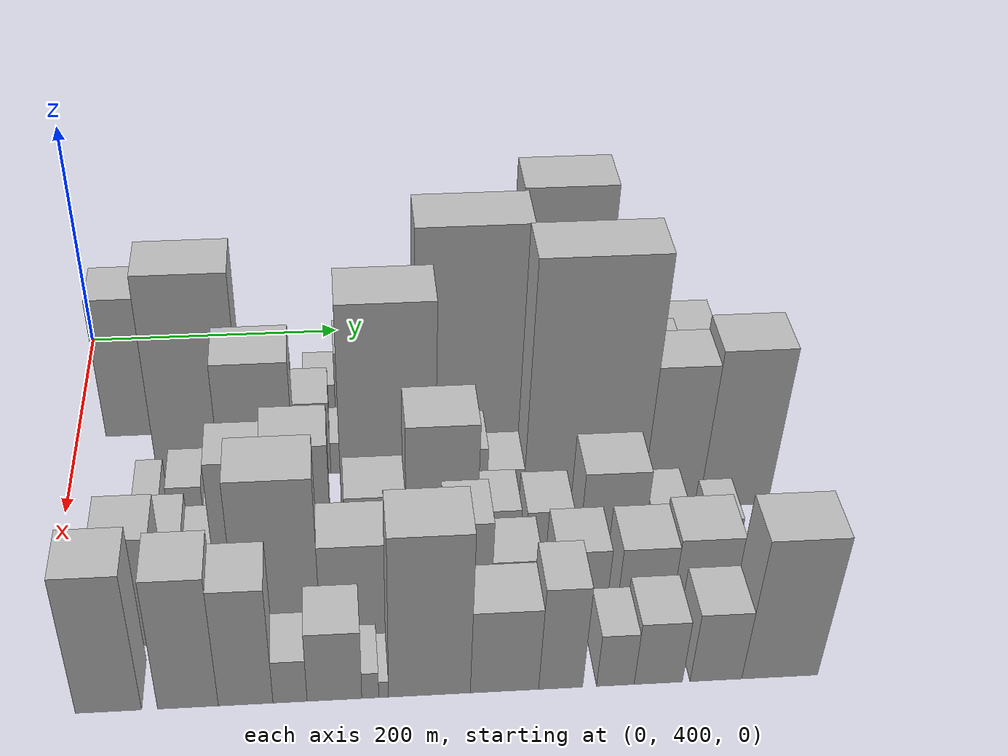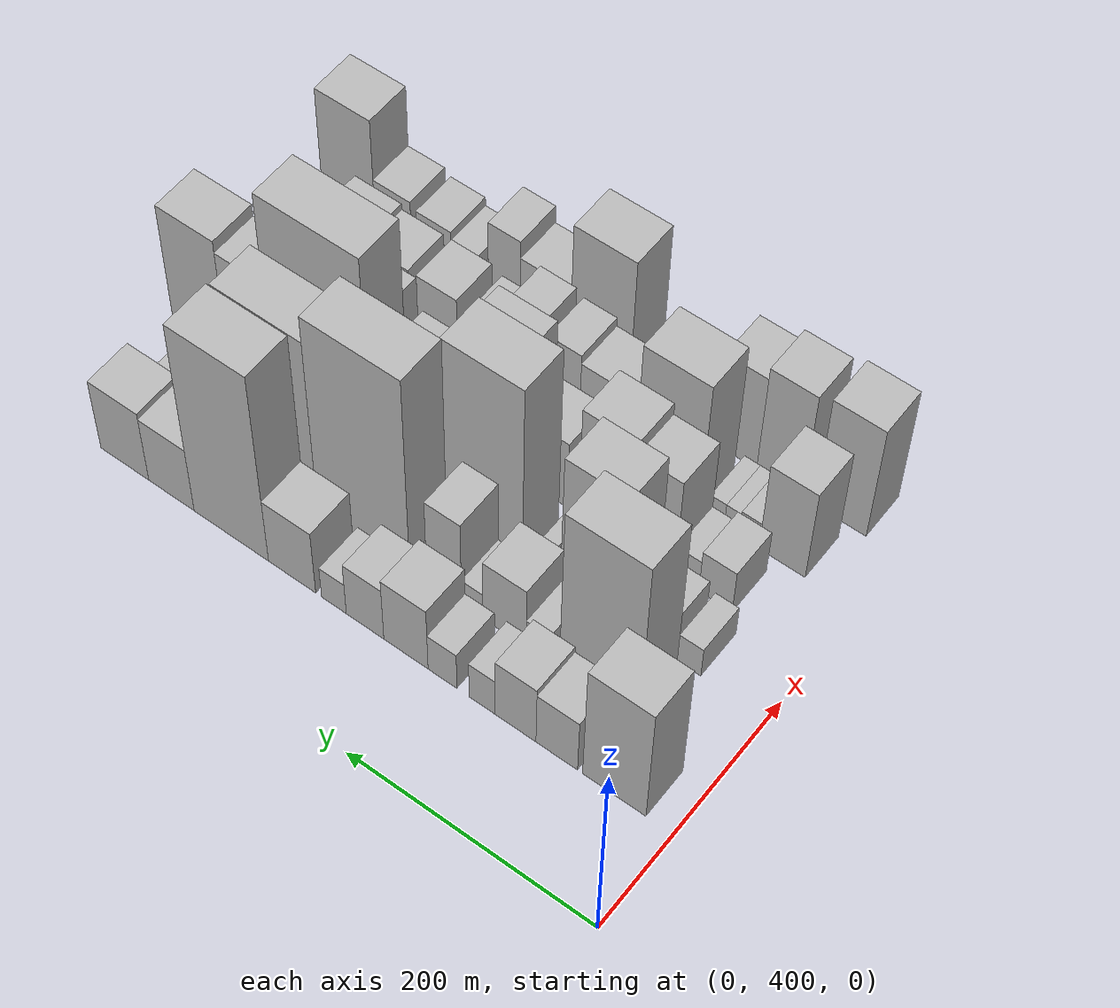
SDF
<sdf version="1.6">
 <world name="default">
  <model name="building_37">
   <static>1</static>
   <pose>100.0000 446.4588 0 0.000000 0.000000 0.000000</pose>
   <link name="link">
    <pose>0 0 64.50 0 0 0</pose>
    <collision name="collision"><geometry><box><size>40.0000 49.7935 129.0000</size></box></geometry></collision>
    <visual name="visual">
     <cast_shadows>0</cast_shadows>
     <geometry><box><size>40.0000 49.7935 129.0000</size></box></geometry>
     <material>
      <script>
       <uri>model://HANNAS_wall/materials/scripts</uri>
       <uri>model://HANNAS_wall/materials/textures</uri>
       <name>vrc/HANNAS_wall</name>
      </script>
     </material>
    </visual>
   </link>
  </model>
  <model name="building_38">
   <static>1</static>
   <pose>100.0000 491.9619 0 0.000000 0.000000 0.000000</pose>
   <link name="link">
    <pose>0 0 30.00 0 0 0</pose>
    <collision name="collision"><geometry><box><size>40.0000 33.2126 60.0000</size></box></geometry></collision>
    <visual name="visual">
     <cast_shadows>0</cast_shadows>
     <geometry><box><size>40.0000 33.2126 60.0000</size></box></geometry>
     <material>
      <script>
       <uri>model://HANNAS_wall/materials/scripts</uri>
       <uri>model://HANNAS_wall/materials/textures</uri>
       <name>vrc/HANNAS_wall</name>
      </script>
     </material>
    </visual>
   </link>
  </model>
  <model name="building_39">
   <static>1</static>
   <pose>100.0000 525.1306 0 0.000000 0.000000 0.000000</pose>
   <link name="link">
    <pose>0 0 33.00 0 0 0</pose>
    <collision name="collision"><geometry><box><size>40.0000 33.1248 66.0000</size></box></geometry></collision>
    <visual name="visual">
     <cast_shadows>0</cast_shadows>
     <geometry><box><size>40.0000 33.1248 66.0000</size></box></geometry>
     <material>
      <script>
       <uri>model://HANNAS_wall/materials/scripts</uri>
       <uri>model://HANNAS_wall/materials/textures</uri>
       <name>vrc/HANNAS_wall</name>
      </script>
     </material>
    </visual>
   </link>
  </model>
  <model name="building_40">
   <static>1</static>
   <pose>100.0000 552.2777 0 0.000000 0.000000 0.000000</pose>
   <link name="link">
    <pose>0 0 21.00 0 0 0</pose>
    <collision name="collision"><geometry><box><size>40.0000 21.1694 42.0000</size></box></geometry></collision>
    <visual name="visual">
     <cast_shadows>0</cast_shadows>
     <geometry><box><size>40.0000 21.1694 42.0000</size></box></geometry>
     <material>
      <script>
       <uri>model://HANNAS_wall/materials/scripts</uri>
       <uri>model://HANNAS_wall/materials/textures</uri>
       <name>vrc/HANNAS_wall</name>
      </script>
     </material>
    </visual>
   </link>
  </model>
  <model name="building_41">
   <static>1</static>
   <pose>100.0000 584.7728 0 0.000000 0.000000 0.000000</pose>
   <link name="link">
    <pose>0 0 21.00 0 0 0</pose>
    <collision name="collision"><geometry><box><size>40.0000 23.8207 42.0000</size></box></geometry></collision>
    <visual name="visual">
     <cast_shadows>0</cast_shadows>
     <geometry><box><size>40.0000 23.8207 42.0000</size></box></geometry>
     <material>
      <script>
       <uri>model://HANNAS_wall/materials/scripts</uri>
       <uri>model://HANNAS_wall/materials/textures</uri>
       <name>vrc/HANNAS_wall</name>
      </script>
     </material>
    </visual>
   </link>
  </model>
  <model name="building_42">
   <static>1</static>
   <pose>100.0000 615.1930 0 0.000000 0.000000 0.000000</pose>
   <link name="link">
    <pose>0 0 36.00 0 0 0</pose>
    <collision name="collision"><geometry><box><size>40.0000 37.0197 72.0000</size></box></geometry></collision>
    <visual name="visual">
     <cast_shadows>0</cast_shadows>
     <geometry><box><size>40.0000 37.0197 72.0000</size></box></geometry>
     <material>
      <script>
       <uri>model://HANNAS_wall/materials/scripts</uri>
       <uri>model://HANNAS_wall/materials/textures</uri>
       <name>vrc/HANNAS_wall</name>
      </script>
     </material>
    </visual>
   </link>
  </model>
  <model name="building_43">
   <static>1</static>
   <pose>100.0000 649.6365 0 0.000000 0.000000 0.000000</pose>
   <link name="link">
    <pose>0 0 30.00 0 0 0</pose>
    <collision name="collision"><geometry><box><size>40.0000 31.8674 60.0000</size></box></geometry></collision>
    <visual name="visual">
     <cast_shadows>0</cast_shadows>
     <geometry><box><size>40.0000 31.8674 60.0000</size></box></geometry>
     <material>
      <script>
       <uri>model://HANNAS_wall/materials/scripts</uri>
       <uri>model://HANNAS_wall/materials/textures</uri>
       <name>vrc/HANNAS_wall</name>
      </script>
     </material>
    </visual>
   </link>
  </model>
  <model name="building_44">
   <static>1</static>
   <pose>100.0000 676.1484 0 0.000000 0.000000 0.000000</pose>
   <link name="link">
    <pose>0 0 18.00 0 0 0</pose>
    <collision name="collision"><geometry><box><size>40.0000 21.1563 36.0000</size></box></geometry></collision>
    <visual name="visual">
     <cast_shadows>0</cast_shadows>
     <geometry><box><size>40.0000 21.1563 36.0000</size></box></geometry>
     <material>
      <script>
       <uri>model://HANNAS_wall/materials/scripts</uri>
       <uri>model://HANNAS_wall/materials/textures</uri>
       <name>vrc/HANNAS_wall</name>
      </script>
     </material>
    </visual>
   </link>
  </model>
  <model name="building_45">
   <static>1</static>
   <pose>100.0000 712.2289 0 0.000000 0.000000 0.000000</pose>
   <link name="link">
    <pose>0 0 36.00 0 0 0</pose>
    <collision name="collision"><geometry><box><size>40.0000 41.0048 72.0000</size></box></geometry></collision>
    <visual name="visual">
     <cast_shadows>0</cast_shadows>
     <geometry><box><size>40.0000 41.0048 72.0000</size></box></geometry>
     <material>
      <script>
       <uri>model://HANNAS_wall/materials/scripts</uri>
       <uri>model://HANNAS_wall/materials/textures</uri>
       <name>vrc/HANNAS_wall</name>
      </script>
     </material>
    </visual>
   </link>
  </model>
  <model name="building_46">
   <static>1</static>
   <pose>100.0000 765.6833 0 0.000000 0.000000 0.000000</pose>
   <link name="link">
    <pose>0 0 105.00 0 0 0</pose>
    <collision name="collision"><geometry><box><size>40.0000 65.9039 210.0000</size></box></geometry></collision>
    <visual name="visual">
     <cast_shadows>0</cast_shadows>
     <geometry><box><size>40.0000 65.9039 210.0000</size></box></geometry>
     <material>
      <script>
       <uri>model://HANNAS_wall/materials/scripts</uri>
       <uri>model://HANNAS_wall/materials/textures</uri>
       <name>vrc/HANNAS_wall</name>
      </script>
     </material>
    </visual>
   </link>
  </model>
  <model name="building_47">
   <static>1</static>
   <pose>100.0000 819.1028 0 0.000000 0.000000 0.000000</pose>
   <link name="link">
    <pose>0 0 36.00 0 0 0</pose>
    <collision name="collision"><geometry><box><size>40.0000 40.9353 72.0000</size></box></geometry></collision>
    <visual name="visual">
     <cast_shadows>0</cast_shadows>
     <geometry><box><size>40.0000 40.9353 72.0000</size></box></geometry>
     <material>
      <script>
       <uri>model://HANNAS_wall/materials/scripts</uri>
       <uri>model://HANNAS_wall/materials/textures</uri>
       <name>vrc/HANNAS_wall</name>
      </script>
     </material>
    </visual>
   </link>
  </model>
  <model name="building_48">
   <static>1</static>
   <pose>100.0000 861.5395 0 0.000000 0.000000 0.000000</pose>
   <link name="link">
    <pose>0 0 39.00 0 0 0</pose>
    <collision name="collision"><geometry><box><size>40.0000 43.9381 78.0000</size></box></geometry></collision>
    <visual name="visual">
     <cast_shadows>0</cast_shadows>
     <geometry><box><size>40.0000 43.9381 78.0000</size></box></geometry>
     <material>
      <script>
       <uri>model://HANNAS_wall/materials/scripts</uri>
       <uri>model://HANNAS_wall/materials/textures</uri>
       <name>vrc/HANNAS_wall</name>
      </script>
     </material>
    </visual>
   </link>
  </model>
  <model name="building_84">
   <static>1</static>
   <pose>152.0000 496.5781 0 0.000000 0.000000 0.000000</pose>
   <link name="link">
    <pose>0 0 93.00 0 0 0</pose>
    <collision name="collision"><geometry><box><size>40.0000 64.3268 186.0000</size></box></geometry></collision>
    <visual name="visual">
     <cast_shadows>0</cast_shadows>
     <geometry><box><size>40.0000 64.3268 186.0000</size></box></geometry>
     <material>
      <script>
       <uri>model://HANNAS_wall/materials/scripts</uri>
       <uri>model://HANNAS_wall/materials/textures</uri>
       <name>vrc/HANNAS_wall</name>
      </script>
     </material>
    </visual>
   </link>
  </model>
  <model name="building_85">
   <static>1</static>
   <pose>152.0000 546.3800 0 0.000000 0.000000 0.000000</pose>
   <link name="link">
    <pose>0 0 16.50 0 0 0</pose>
    <collision name="collision"><geometry><box><size>40.0000 19.2770 33.0000</size></box></geometry></collision>
    <visual name="visual">
     <cast_shadows>0</cast_shadows>
     <geometry><box><size>40.0000 19.2770 33.0000</size></box></geometry>
     <material>
      <script>
       <uri>model://HANNAS_wall/materials/scripts</uri>
       <uri>model://HANNAS_wall/materials/textures</uri>
       <name>vrc/HANNAS_wall</name>
      </script>
     </material>
    </visual>
   </link>
  </model>
  <model name="building_86">
   <static>1</static>
   <pose>152.0000 573.8452 0 0.000000 0.000000 0.000000</pose>
   <link name="link">
    <pose>0 0 34.50 0 0 0</pose>
    <collision name="collision"><geometry><box><size>40.0000 35.6533 69.0000</size></box></geometry></collision>
    <visual name="visual">
     <cast_shadows>0</cast_shadows>
     <geometry><box><size>40.0000 35.6533 69.0000</size></box></geometry>
     <material>
      <script>
       <uri>model://HANNAS_wall/materials/scripts</uri>
       <uri>model://HANNAS_wall/materials/textures</uri>
       <name>vrc/HANNAS_wall</name>
      </script>
     </material>
    </visual>
   </link>
  </model>
  <model name="building_87">
   <static>1</static>
   <pose>152.0000 600.6065 0 0.000000 0.000000 0.000000</pose>
   <link name="link">
    <pose>0 0 15.00 0 0 0</pose>
    <collision name="collision"><geometry><box><size>40.0000 17.8693 30.0000</size></box></geometry></collision>
    <visual name="visual">
     <cast_shadows>0</cast_shadows>
     <geometry><box><size>40.0000 17.8693 30.0000</size></box></geometry>
     <material>
      <script>
       <uri>model://HANNAS_wall/materials/scripts</uri>
       <uri>model://HANNAS_wall/materials/textures</uri>
       <name>vrc/HANNAS_wall</name>
      </script>
     </material>
    </visual>
   </link>
  </model>
  <model name="building_88">
   <static>1</static>
   <pose>152.0000 624.1690 0 0.000000 0.000000 0.000000</pose>
   <link name="link">
    <pose>0 0 48.00 0 0 0</pose>
    <collision name="collision"><geometry><box><size>40.0000 29.2557 96.0000</size></box></geometry></collision>
    <visual name="visual">
     <cast_shadows>0</cast_shadows>
     <geometry><box><size>40.0000 29.2557 96.0000</size></box></geometry>
     <material>
      <script>
       <uri>model://HANNAS_wall/materials/scripts</uri>
       <uri>model://HANNAS_wall/materials/textures</uri>
       <name>vrc/HANNAS_wall</name>
      </script>
     </material>
    </visual>
   </link>
  </model>
  <model name="building_89">
   <static>1</static>
   <pose>152.0000 643.6117 0 0.000000 0.000000 0.000000</pose>
   <link name="link">
    <pose>0 0 10.50 0 0 0</pose>
    <collision name="collision"><geometry><box><size>40.0000 9.6298 21.0000</size></box></geometry></collision>
    <visual name="visual">
     <cast_shadows>0</cast_shadows>
     <geometry><box><size>40.0000 9.6298 21.0000</size></box></geometry>
     <material>
      <script>
       <uri>model://HANNAS_wall/materials/scripts</uri>
       <uri>model://HANNAS_wall/materials/textures</uri>
       <name>vrc/HANNAS_wall</name>
      </script>
     </material>
    </visual>
   </link>
  </model>
  <model name="building_90">
   <static>1</static>
   <pose>152.0000 693.3766 0 0.000000 0.000000 0.000000</pose>
   <link name="link">
    <pose>0 0 108.00 0 0 0</pose>
    <collision name="collision"><geometry><box><size>40.0000 79.8999 216.0000</size></box></geometry></collision>
    <visual name="visual">
     <cast_shadows>0</cast_shadows>
     <geometry><box><size>40.0000 79.8999 216.0000</size></box></geometry>
     <material>
      <script>
       <uri>model://HANNAS_wall/materials/scripts</uri>
       <uri>model://HANNAS_wall/materials/textures</uri>
       <name>vrc/HANNAS_wall</name>
      </script>
     </material>
    </visual>
   </link>
  </model>
  <model name="building_91">
   <static>1</static>
   <pose>152.0000 771.0886 0 0.000000 0.000000 0.000000</pose>
   <link name="link">
    <pose>0 0 94.50 0 0 0</pose>
    <collision name="collision"><geometry><box><size>40.0000 75.5242 189.0000</size></box></geometry></collision>
    <visual name="visual">
     <cast_shadows>0</cast_shadows>
     <geometry><box><size>40.0000 75.5242 189.0000</size></box></geometry>
     <material>
      <script>
       <uri>model://HANNAS_wall/materials/scripts</uri>
       <uri>model://HANNAS_wall/materials/textures</uri>
       <name>vrc/HANNAS_wall</name>
      </script>
     </material>
    </visual>
   </link>
  </model>
  <model name="building_92">
   <static>1</static>
   <pose>152.0000 828.2086 0 0.000000 0.000000 0.000000</pose>
   <link name="link">
    <pose>0 0 51.00 0 0 0</pose>
    <collision name="collision"><geometry><box><size>40.0000 32.7158 102.0000</size></box></geometry></collision>
    <visual name="visual">
     <cast_shadows>0</cast_shadows>
     <geometry><box><size>40.0000 32.7158 102.0000</size></box></geometry>
     <material>
      <script>
       <uri>model://HANNAS_wall/materials/scripts</uri>
       <uri>model://HANNAS_wall/materials/textures</uri>
       <name>vrc/HANNAS_wall</name>
      </script>
     </material>
    </visual>
   </link>
  </model>
  <model name="building_93">
   <static>1</static>
   <pose>152.0000 864.6587 0 0.000000 0.000000 0.000000</pose>
   <link name="link">
    <pose>0 0 21.00 0 0 0</pose>
    <collision name="collision"><geometry><box><size>40.0000 24.1844 42.0000</size></box></geometry></collision>
    <visual name="visual">
     <cast_shadows>0</cast_shadows>
     <geometry><box><size>40.0000 24.1844 42.0000</size></box></geometry>
     <material>
      <script>
       <uri>model://HANNAS_wall/materials/scripts</uri>
       <uri>model://HANNAS_wall/materials/textures</uri>
       <name>vrc/HANNAS_wall</name>
      </script>
     </material>
    </visual>
   </link>
  </model>
  <model name="building_131">
   <static>1</static>
   <pose>204.0000 462.0382 0 0.000000 0.000000 0.000000</pose>
   <link name="link">
    <pose>0 0 16.50 0 0 0</pose>
    <collision name="collision"><geometry><box><size>40.0000 18.8869 33.0000</size></box></geometry></collision>
    <visual name="visual">
     <cast_shadows>0</cast_shadows>
     <geometry><box><size>40.0000 18.8869 33.0000</size></box></geometry>
     <material>
      <script>
       <uri>model://HANNAS_wall/materials/scripts</uri>
       <uri>model://HANNAS_wall/materials/textures</uri>
       <name>vrc/HANNAS_wall</name>
      </script>
     </material>
    </visual>
   </link>
  </model>
  <model name="building_132">
   <static>1</static>
   <pose>204.0000 488.8367 0 0.000000 0.000000 0.000000</pose>
   <link name="link">
    <pose>0 0 21.00 0 0 0</pose>
    <collision name="collision"><geometry><box><size>40.0000 24.7100 42.0000</size></box></geometry></collision>
    <visual name="visual">
     <cast_shadows>0</cast_shadows>
     <geometry><box><size>40.0000 24.7100 42.0000</size></box></geometry>
     <material>
      <script>
       <uri>model://HANNAS_wall/materials/scripts</uri>
       <uri>model://HANNAS_wall/materials/textures</uri>
       <name>vrc/HANNAS_wall</name>
      </script>
     </material>
    </visual>
   </link>
  </model>
  <model name="building_133">
   <static>1</static>
   <pose>204.0000 506.4346 0 0.000000 0.000000 0.000000</pose>
   <link name="link">
    <pose>0 0 10.50 0 0 0</pose>
    <collision name="collision"><geometry><box><size>40.0000 10.4859 21.0000</size></box></geometry></collision>
    <visual name="visual">
     <cast_shadows>0</cast_shadows>
     <geometry><box><size>40.0000 10.4859 21.0000</size></box></geometry>
     <material>
      <script>
       <uri>model://HANNAS_wall/materials/scripts</uri>
       <uri>model://HANNAS_wall/materials/textures</uri>
       <name>vrc/HANNAS_wall</name>
      </script>
     </material>
    </visual>
   </link>
  </model>
  <model name="building_134">
   <static>1</static>
   <pose>204.0000 541.2451 0 0.000000 0.000000 0.000000</pose>
   <link name="link">
    <pose>0 0 75.00 0 0 0</pose>
    <collision name="collision"><geometry><box><size>40.0000 51.1350 150.0000</size></box></geometry></collision>
    <visual name="visual">
     <cast_shadows>0</cast_shadows>
     <geometry><box><size>40.0000 51.1350 150.0000</size></box></geometry>
     <material>
      <script>
       <uri>model://HANNAS_wall/materials/scripts</uri>
       <uri>model://HANNAS_wall/materials/textures</uri>
       <name>vrc/HANNAS_wall</name>
      </script>
     </material>
    </visual>
   </link>
  </model>
  <model name="building_135">
   <static>1</static>
   <pose>204.0000 582.1087 0 0.000000 0.000000 0.000000</pose>
   <link name="link">
    <pose>0 0 13.50 0 0 0</pose>
    <collision name="collision"><geometry><box><size>40.0000 12.5923 27.0000</size></box></geometry></collision>
    <visual name="visual">
     <cast_shadows>0</cast_shadows>
     <geometry><box><size>40.0000 12.5923 27.0000</size></box></geometry>
     <material>
      <script>
       <uri>model://HANNAS_wall/materials/scripts</uri>
       <uri>model://HANNAS_wall/materials/textures</uri>
       <name>vrc/HANNAS_wall</name>
      </script>
     </material>
    </visual>
   </link>
  </model>
  <model name="building_136">
   <static>1</static>
   <pose>204.0000 631.5544 0 0.000000 0.000000 0.000000</pose>
   <link name="link">
    <pose>0 0 97.50 0 0 0</pose>
    <collision name="collision"><geometry><box><size>40.0000 66.2992 195.0000</size></box></geometry></collision>
    <visual name="visual">
     <cast_shadows>0</cast_shadows>
     <geometry><box><size>40.0000 66.2992 195.0000</size></box></geometry>
     <material>
      <script>
       <uri>model://HANNAS_wall/materials/scripts</uri>
       <uri>model://HANNAS_wall/materials/textures</uri>
       <name>vrc/HANNAS_wall</name>
      </script>
     </material>
    </visual>
   </link>
  </model>
  <model name="building_137">
   <static>1</static>
   <pose>204.0000 683.0806 0 0.000000 0.000000 0.000000</pose>
   <link name="link">
    <pose>0 0 33.00 0 0 0</pose>
    <collision name="collision"><geometry><box><size>40.0000 36.7530 66.0000</size></box></geometry></collision>
    <visual name="visual">
     <cast_shadows>0</cast_shadows>
     <geometry><box><size>40.0000 36.7530 66.0000</size></box></geometry>
     <material>
      <script>
       <uri>model://HANNAS_wall/materials/scripts</uri>
       <uri>model://HANNAS_wall/materials/textures</uri>
       <name>vrc/HANNAS_wall</name>
      </script>
     </material>
    </visual>
   </link>
  </model>
  <model name="building_138">
   <static>1</static>
   <pose>204.0000 714.5822 0 0.000000 0.000000 0.000000</pose>
   <link name="link">
    <pose>0 0 22.50 0 0 0</pose>
    <collision name="collision"><geometry><box><size>40.0000 26.2503 45.0000</size></box></geometry></collision>
    <visual name="visual">
     <cast_shadows>0</cast_shadows>
     <geometry><box><size>40.0000 26.2503 45.0000</size></box></geometry>
     <material>
      <script>
       <uri>model://HANNAS_wall/materials/scripts</uri>
       <uri>model://HANNAS_wall/materials/textures</uri>
       <name>vrc/HANNAS_wall</name>
      </script>
     </material>
    </visual>
   </link>
  </model>
  <model name="building_139">
   <static>1</static>
   <pose>204.0000 770.8709 0 0.000000 0.000000 0.000000</pose>
   <link name="link">
    <pose>0 0 112.50 0 0 0</pose>
    <collision name="collision"><geometry><box><size>40.0000 86.3272 225.0000</size></box></geometry></collision>
    <visual name="visual">
     <cast_shadows>0</cast_shadows>
     <geometry><box><size>40.0000 86.3272 225.0000</size></box></geometry>
     <material>
      <script>
       <uri>model://HANNAS_wall/materials/scripts</uri>
       <uri>model://HANNAS_wall/materials/textures</uri>
       <name>vrc/HANNAS_wall</name>
      </script>
     </material>
    </visual>
   </link>
  </model>
  <model name="building_140">
   <static>1</static>
   <pose>204.0000 835.0405 0 0.000000 0.000000 0.000000</pose>
   <link name="link">
    <pose>0 0 66.00 0 0 0</pose>
    <collision name="collision"><geometry><box><size>40.0000 42.0120 132.0000</size></box></geometry></collision>
    <visual name="visual">
     <cast_shadows>0</cast_shadows>
     <geometry><box><size>40.0000 42.0120 132.0000</size></box></geometry>
     <material>
      <script>
       <uri>model://HANNAS_wall/materials/scripts</uri>
       <uri>model://HANNAS_wall/materials/textures</uri>
       <name>vrc/HANNAS_wall</name>
      </script>
     </material>
    </visual>
   </link>
  </model>
  <model name="building_141">
   <static>1</static>
   <pose>204.0000 881.3185 0 0.000000 0.000000 0.000000</pose>
   <link name="link">
    <pose>0 0 72.00 0 0 0</pose>
    <collision name="collision"><geometry><box><size>40.0000 50.5440 144.0000</size></box></geometry></collision>
    <visual name="visual">
     <cast_shadows>0</cast_shadows>
     <geometry><box><size>40.0000 50.5440 144.0000</size></box></geometry>
     <material>
      <script>
       <uri>model://HANNAS_wall/materials/scripts</uri>
       <uri>model://HANNAS_wall/materials/textures</uri>
       <name>vrc/HANNAS_wall</name>
      </script>
     </material>
    </visual>
   </link>
  </model>
  <model name="building_181">
   <static>1</static>
   <pose>256.0000 477.4345 0 0.000000 0.000000 0.000000</pose>
   <link name="link">
    <pose>0 0 24.00 0 0 0</pose>
    <collision name="collision"><geometry><box><size>40.0000 26.9178 48.0000</size></box></geometry></collision>
    <visual name="visual">
     <cast_shadows>0</cast_shadows>
     <geometry><box><size>40.0000 26.9178 48.0000</size></box></geometry>
     <material>
      <script>
       <uri>model://HANNAS_wall/materials/scripts</uri>
       <uri>model://HANNAS_wall/materials/textures</uri>
       <name>vrc/HANNAS_wall</name>
      </script>
     </material>
    </visual>
   </link>
  </model>
  <model name="building_182">
   <static>1</static>
   <pose>256.0000 500.6521 0 0.000000 0.000000 0.000000</pose>
   <link name="link">
    <pose>0 0 18.00 0 0 0</pose>
    <collision name="collision"><geometry><box><size>40.0000 19.5173 36.0000</size></box></geometry></collision>
    <visual name="visual">
     <cast_shadows>0</cast_shadows>
     <geometry><box><size>40.0000 19.5173 36.0000</size></box></geometry>
     <material>
      <script>
       <uri>model://HANNAS_wall/materials/scripts</uri>
       <uri>model://HANNAS_wall/materials/textures</uri>
       <name>vrc/HANNAS_wall</name>
      </script>
     </material>
    </visual>
   </link>
  </model>
  <model name="building_183">
   <static>1</static>
   <pose>256.0000 528.6396 0 0.000000 0.000000 0.000000</pose>
   <link name="link">
    <pose>0 0 55.50 0 0 0</pose>
    <collision name="collision"><geometry><box><size>40.0000 36.4577 111.0000</size></box></geometry></collision>
    <visual name="visual">
     <cast_shadows>0</cast_shadows>
     <geometry><box><size>40.0000 36.4577 111.0000</size></box></geometry>
     <material>
      <script>
       <uri>model://HANNAS_wall/materials/scripts</uri>
       <uri>model://HANNAS_wall/materials/textures</uri>
       <name>vrc/HANNAS_wall</name>
      </script>
     </material>
    </visual>
   </link>
  </model>
  <model name="building_184">
   <static>1</static>
   <pose>256.0000 568.6945 0 0.000000 0.000000 0.000000</pose>
   <link name="link">
    <pose>0 0 61.50 0 0 0</pose>
    <collision name="collision"><geometry><box><size>40.0000 43.6522 123.0000</size></box></geometry></collision>
    <visual name="visual">
     <cast_shadows>0</cast_shadows>
     <geometry><box><size>40.0000 43.6522 123.0000</size></box></geometry>
     <material>
      <script>
       <uri>model://HANNAS_wall/materials/scripts</uri>
       <uri>model://HANNAS_wall/materials/textures</uri>
       <name>vrc/HANNAS_wall</name>
      </script>
     </material>
    </visual>
   </link>
  </model>
  <model name="building_185">
   <static>1</static>
   <pose>256.0000 595.2394 0 0.000000 0.000000 0.000000</pose>
   <link name="link">
    <pose>0 0 10.50 0 0 0</pose>
    <collision name="collision"><geometry><box><size>40.0000 9.4376 21.0000</size></box></geometry></collision>
    <visual name="visual">
     <cast_shadows>0</cast_shadows>
     <geometry><box><size>40.0000 9.4376 21.0000</size></box></geometry>
     <material>
      <script>
       <uri>model://HANNAS_wall/materials/scripts</uri>
       <uri>model://HANNAS_wall/materials/textures</uri>
       <name>vrc/HANNAS_wall</name>
      </script>
     </material>
    </visual>
   </link>
  </model>
  <model name="building_186">
   <static>1</static>
   <pose>256.0000 620.3201 0 0.000000 0.000000 0.000000</pose>
   <link name="link">
    <pose>0 0 37.50 0 0 0</pose>
    <collision name="collision"><geometry><box><size>40.0000 40.7239 75.0000</size></box></geometry></collision>
    <visual name="visual">
     <cast_shadows>0</cast_shadows>
     <geometry><box><size>40.0000 40.7239 75.0000</size></box></geometry>
     <material>
      <script>
       <uri>model://HANNAS_wall/materials/scripts</uri>
       <uri>model://HANNAS_wall/materials/textures</uri>
       <name>vrc/HANNAS_wall</name>
      </script>
     </material>
    </visual>
   </link>
  </model>
  <model name="building_187">
   <static>1</static>
   <pose>256.0000 664.8126 0 0.000000 0.000000 0.000000</pose>
   <link name="link">
    <pose>0 0 67.50 0 0 0</pose>
    <collision name="collision"><geometry><box><size>40.0000 48.2611 135.0000</size></box></geometry></collision>
    <visual name="visual">
     <cast_shadows>0</cast_shadows>
     <geometry><box><size>40.0000 48.2611 135.0000</size></box></geometry>
     <material>
      <script>
       <uri>model://HANNAS_wall/materials/scripts</uri>
       <uri>model://HANNAS_wall/materials/textures</uri>
       <name>vrc/HANNAS_wall</name>
      </script>
     </material>
    </visual>
   </link>
  </model>
  <model name="building_188">
   <static>1</static>
   <pose>256.0000 703.8640 0 0.000000 0.000000 0.000000</pose>
   <link name="link">
    <pose>0 0 28.50 0 0 0</pose>
    <collision name="collision"><geometry><box><size>40.0000 29.8417 57.0000</size></box></geometry></collision>
    <visual name="visual">
     <cast_shadows>0</cast_shadows>
     <geometry><box><size>40.0000 29.8417 57.0000</size></box></geometry>
     <material>
      <script>
       <uri>model://HANNAS_wall/materials/scripts</uri>
       <uri>model://HANNAS_wall/materials/textures</uri>
       <name>vrc/HANNAS_wall</name>
      </script>
     </material>
    </visual>
   </link>
  </model>
  <model name="building_189">
   <static>1</static>
   <pose>256.0000 738.7289 0 0.000000 0.000000 0.000000</pose>
   <link name="link">
    <pose>0 0 27.00 0 0 0</pose>
    <collision name="collision"><geometry><box><size>40.0000 31.8881 54.0000</size></box></geometry></collision>
    <visual name="visual">
     <cast_shadows>0</cast_shadows>
     <geometry><box><size>40.0000 31.8881 54.0000</size></box></geometry>
     <material>
      <script>
       <uri>model://HANNAS_wall/materials/scripts</uri>
       <uri>model://HANNAS_wall/materials/textures</uri>
       <name>vrc/HANNAS_wall</name>
      </script>
     </material>
    </visual>
   </link>
  </model>
  <model name="building_190">
   <static>1</static>
   <pose>256.0000 781.9064 0 0.000000 0.000000 0.000000</pose>
   <link name="link">
    <pose>0 0 43.50 0 0 0</pose>
    <collision name="collision"><geometry><box><size>40.0000 44.4669 87.0000</size></box></geometry></collision>
    <visual name="visual">
     <cast_shadows>0</cast_shadows>
     <geometry><box><size>40.0000 44.4669 87.0000</size></box></geometry>
     <material>
      <script>
       <uri>model://HANNAS_wall/materials/scripts</uri>
       <uri>model://HANNAS_wall/materials/textures</uri>
       <name>vrc/HANNAS_wall</name>
      </script>
     </material>
    </visual>
   </link>
  </model>
  <model name="building_191">
   <static>1</static>
   <pose>256.0000 820.3130 0 0.000000 0.000000 0.000000</pose>
   <link name="link">
    <pose>0 0 25.50 0 0 0</pose>
    <collision name="collision"><geometry><box><size>40.0000 26.3464 51.0000</size></box></geometry></collision>
    <visual name="visual">
     <cast_shadows>0</cast_shadows>
     <geometry><box><size>40.0000 26.3464 51.0000</size></box></geometry>
     <material>
      <script>
       <uri>model://HANNAS_wall/materials/scripts</uri>
       <uri>model://HANNAS_wall/materials/textures</uri>
       <name>vrc/HANNAS_wall</name>
      </script>
     </material>
    </visual>
   </link>
  </model>
  <model name="building_192">
   <static>1</static>
   <pose>256.0000 838.6364 0 0.000000 0.000000 0.000000</pose>
   <link name="link">
    <pose>0 0 10.50 0 0 0</pose>
    <collision name="collision"><geometry><box><size>40.0000 10.3004 21.0000</size></box></geometry></collision>
    <visual name="visual">
     <cast_shadows>0</cast_shadows>
     <geometry><box><size>40.0000 10.3004 21.0000</size></box></geometry>
     <material>
      <script>
       <uri>model://HANNAS_wall/materials/scripts</uri>
       <uri>model://HANNAS_wall/materials/textures</uri>
       <name>vrc/HANNAS_wall</name>
      </script>
     </material>
    </visual>
   </link>
  </model>
  <model name="building_193">
   <static>1</static>
   <pose>256.0000 860.4022 0 0.000000 0.000000 0.000000</pose>
   <link name="link">
    <pose>0 0 19.50 0 0 0</pose>
    <collision name="collision"><geometry><box><size>40.0000 23.2312 39.0000</size></box></geometry></collision>
    <visual name="visual">
     <cast_shadows>0</cast_shadows>
     <geometry><box><size>40.0000 23.2312 39.0000</size></box></geometry>
     <material>
      <script>
       <uri>model://HANNAS_wall/materials/scripts</uri>
       <uri>model://HANNAS_wall/materials/textures</uri>
       <name>vrc/HANNAS_wall</name>
      </script>
     </material>
    </visual>
   </link>
  </model>
  <model name="building_230">
   <static>1</static>
   <pose>308.0000 459.5236 0 0.000000 0.000000 0.000000</pose>
   <link name="link">
    <pose>0 0 49.50 0 0 0</pose>
    <collision name="collision"><geometry><box><size>40.0000 37.4267 99.0000</size></box></geometry></collision>
    <visual name="visual">
     <cast_shadows>0</cast_shadows>
     <geometry><box><size>40.0000 37.4267 99.0000</size></box></geometry>
     <material>
      <script>
       <uri>model://HANNAS_wall/materials/scripts</uri>
       <uri>model://HANNAS_wall/materials/textures</uri>
       <name>vrc/HANNAS_wall</name>
      </script>
     </material>
    </visual>
   </link>
  </model>
  <model name="building_231">
   <static>1</static>
   <pose>308.0000 486.3039 0 0.000000 0.000000 0.000000</pose>
   <link name="link">
    <pose>0 0 15.00 0 0 0</pose>
    <collision name="collision"><geometry><box><size>40.0000 16.1340 30.0000</size></box></geometry></collision>
    <visual name="visual">
     <cast_shadows>0</cast_shadows>
     <geometry><box><size>40.0000 16.1340 30.0000</size></box></geometry>
     <material>
      <script>
       <uri>model://HANNAS_wall/materials/scripts</uri>
       <uri>model://HANNAS_wall/materials/textures</uri>
       <name>vrc/HANNAS_wall</name>
      </script>
     </material>
    </visual>
   </link>
  </model>
  <model name="building_232">
   <static>1</static>
   <pose>308.0000 500.5172 0 0.000000 0.000000 0.000000</pose>
   <link name="link">
    <pose>0 0 13.50 0 0 0</pose>
    <collision name="collision"><geometry><box><size>40.0000 12.2925 27.0000</size></box></geometry></collision>
    <visual name="visual">
     <cast_shadows>0</cast_shadows>
     <geometry><box><size>40.0000 12.2925 27.0000</size></box></geometry>
     <material>
      <script>
       <uri>model://HANNAS_wall/materials/scripts</uri>
       <uri>model://HANNAS_wall/materials/textures</uri>
       <name>vrc/HANNAS_wall</name>
      </script>
     </material>
    </visual>
   </link>
  </model>
  <model name="building_233">
   <static>1</static>
   <pose>308.0000 513.2129 0 0.000000 0.000000 0.000000</pose>
   <link name="link">
    <pose>0 0 13.50 0 0 0</pose>
    <collision name="collision"><geometry><box><size>40.0000 13.0989 27.0000</size></box></geometry></collision>
    <visual name="visual">
     <cast_shadows>0</cast_shadows>
     <geometry><box><size>40.0000 13.0989 27.0000</size></box></geometry>
     <material>
      <script>
       <uri>model://HANNAS_wall/materials/scripts</uri>
       <uri>model://HANNAS_wall/materials/textures</uri>
       <name>vrc/HANNAS_wall</name>
      </script>
     </material>
    </visual>
   </link>
  </model>
  <model name="building_234">
   <static>1</static>
   <pose>308.0000 554.0191 0 0.000000 0.000000 0.000000</pose>
   <link name="link">
    <pose>0 0 72.00 0 0 0</pose>
    <collision name="collision"><geometry><box><size>40.0000 54.5135 144.0000</size></box></geometry></collision>
    <visual name="visual">
     <cast_shadows>0</cast_shadows>
     <geometry><box><size>40.0000 54.5135 144.0000</size></box></geometry>
     <material>
      <script>
       <uri>model://HANNAS_wall/materials/scripts</uri>
       <uri>model://HANNAS_wall/materials/textures</uri>
       <name>vrc/HANNAS_wall</name>
      </script>
     </material>
    </visual>
   </link>
  </model>
  <model name="building_235">
   <static>1</static>
   <pose>308.0000 605.0977 0 0.000000 0.000000 0.000000</pose>
   <link name="link">
    <pose>0 0 42.00 0 0 0</pose>
    <collision name="collision"><geometry><box><size>40.0000 47.6438 84.0000</size></box></geometry></collision>
    <visual name="visual">
     <cast_shadows>0</cast_shadows>
     <geometry><box><size>40.0000 47.6438 84.0000</size></box></geometry>
     <material>
      <script>
       <uri>model://HANNAS_wall/materials/scripts</uri>
       <uri>model://HANNAS_wall/materials/textures</uri>
       <name>vrc/HANNAS_wall</name>
      </script>
     </material>
    </visual>
   </link>
  </model>
  <model name="building_236">
   <static>1</static>
   <pose>308.0000 642.9638 0 0.000000 0.000000 0.000000</pose>
   <link name="link">
    <pose>0 0 46.50 0 0 0</pose>
    <collision name="collision"><geometry><box><size>40.0000 28.0884 93.0000</size></box></geometry></collision>
    <visual name="visual">
     <cast_shadows>0</cast_shadows>
     <geometry><box><size>40.0000 28.0884 93.0000</size></box></geometry>
     <material>
      <script>
       <uri>model://HANNAS_wall/materials/scripts</uri>
       <uri>model://HANNAS_wall/materials/textures</uri>
       <name>vrc/HANNAS_wall</name>
      </script>
     </material>
    </visual>
   </link>
  </model>
  <model name="building_237">
   <static>1</static>
   <pose>308.0000 678.2180 0 0.000000 0.000000 0.000000</pose>
   <link name="link">
    <pose>0 0 49.50 0 0 0</pose>
    <collision name="collision"><geometry><box><size>40.0000 30.4201 99.0000</size></box></geometry></collision>
    <visual name="visual">
     <cast_shadows>0</cast_shadows>
     <geometry><box><size>40.0000 30.4201 99.0000</size></box></geometry>
     <material>
      <script>
       <uri>model://HANNAS_wall/materials/scripts</uri>
       <uri>model://HANNAS_wall/materials/textures</uri>
       <name>vrc/HANNAS_wall</name>
      </script>
     </material>
    </visual>
   </link>
  </model>
  <model name="building_238">
   <static>1</static>
   <pose>308.0000 709.6454 0 0.000000 0.000000 0.000000</pose>
   <link name="link">
    <pose>0 0 31.50 0 0 0</pose>
    <collision name="collision"><geometry><box><size>40.0000 32.4346 63.0000</size></box></geometry></collision>
    <visual name="visual">
     <cast_shadows>0</cast_shadows>
     <geometry><box><size>40.0000 32.4346 63.0000</size></box></geometry>
     <material>
      <script>
       <uri>model://HANNAS_wall/materials/scripts</uri>
       <uri>model://HANNAS_wall/materials/textures</uri>
       <name>vrc/HANNAS_wall</name>
      </script>
     </material>
    </visual>
   </link>
  </model>
  <model name="building_239">
   <static>1</static>
   <pose>308.0000 752.5572 0 0.000000 0.000000 0.000000</pose>
   <link name="link">
    <pose>0 0 34.50 0 0 0</pose>
    <collision name="collision"><geometry><box><size>40.0000 35.3892 69.0000</size></box></geometry></collision>
    <visual name="visual">
     <cast_shadows>0</cast_shadows>
     <geometry><box><size>40.0000 35.3892 69.0000</size></box></geometry>
     <material>
      <script>
       <uri>model://HANNAS_wall/materials/scripts</uri>
       <uri>model://HANNAS_wall/materials/textures</uri>
       <name>vrc/HANNAS_wall</name>
      </script>
     </material>
    </visual>
   </link>
  </model>
  <model name="building_240">
   <static>1</static>
   <pose>308.0000 795.7825 0 0.000000 0.000000 0.000000</pose>
   <link name="link">
    <pose>0 0 34.50 0 0 0</pose>
    <collision name="collision"><geometry><box><size>40.0000 37.0614 69.0000</size></box></geometry></collision>
    <visual name="visual">
     <cast_shadows>0</cast_shadows>
     <geometry><box><size>40.0000 37.0614 69.0000</size></box></geometry>
     <material>
      <script>
       <uri>model://HANNAS_wall/materials/scripts</uri>
       <uri>model://HANNAS_wall/materials/textures</uri>
       <name>vrc/HANNAS_wall</name>
      </script>
     </material>
    </visual>
   </link>
  </model>
  <model name="building_241">
   <static>1</static>
   <pose>308.0000 835.2897 0 0.000000 0.000000 0.000000</pose>
   <link name="link">
    <pose>0 0 37.50 0 0 0</pose>
    <collision name="collision"><geometry><box><size>40.0000 41.9528 75.0000</size></box></geometry></collision>
    <visual name="visual">
     <cast_shadows>0</cast_shadows>
     <geometry><box><size>40.0000 41.9528 75.0000</size></box></geometry>
     <material>
      <script>
       <uri>model://HANNAS_wall/materials/scripts</uri>
       <uri>model://HANNAS_wall/materials/textures</uri>
       <name>vrc/HANNAS_wall</name>
      </script>
     </material>
    </visual>
   </link>
  </model>
  <model name="building_242">
   <static>1</static>
   <pose>308.0000 865.1044 0 0.000000 0.000000 0.000000</pose>
   <link name="link">
    <pose>0 0 16.50 0 0 0</pose>
    <collision name="collision"><geometry><box><size>40.0000 17.6765 33.0000</size></box></geometry></collision>
    <visual name="visual">
     <cast_shadows>0</cast_shadows>
     <geometry><box><size>40.0000 17.6765 33.0000</size></box></geometry>
     <material>
      <script>
       <uri>model://HANNAS_wall/materials/scripts</uri>
       <uri>model://HANNAS_wall/materials/textures</uri>
       <name>vrc/HANNAS_wall</name>
      </script>
     </material>
    </visual>
   </link>
  </model>
  <model name="building_281">
   <static>1</static>
   <pose>360.0000 447.0999 0 0.000000 0.000000 0.000000</pose>
   <link name="link">
    <pose>0 0 61.50 0 0 0</pose>
    <collision name="collision"><geometry><box><size>40.0000 41.3359 123.0000</size></box></geometry></collision>
    <visual name="visual">
     <cast_shadows>0</cast_shadows>
     <geometry><box><size>40.0000 41.3359 123.0000</size></box></geometry>
     <material>
      <script>
       <uri>model://HANNAS_wall/materials/scripts</uri>
       <uri>model://HANNAS_wall/materials/textures</uri>
       <name>vrc/HANNAS_wall</name>
      </script>
     </material>
    </visual>
   </link>
  </model>
  <model name="building_282">
   <static>1</static>
   <pose>360.0000 496.8197 0 0.000000 0.000000 0.000000</pose>
   <link name="link">
    <pose>0 0 58.50 0 0 0</pose>
    <collision name="collision"><geometry><box><size>40.0000 38.1037 117.0000</size></box></geometry></collision>
    <visual name="visual">
     <cast_shadows>0</cast_shadows>
     <geometry><box><size>40.0000 38.1037 117.0000</size></box></geometry>
     <material>
      <script>
       <uri>model://HANNAS_wall/materials/scripts</uri>
       <uri>model://HANNAS_wall/materials/textures</uri>
       <name>vrc/HANNAS_wall</name>
      </script>
     </material>
    </visual>
   </link>
  </model>
  <model name="building_283">
   <static>1</static>
   <pose>360.0000 533.0779 0 0.000000 0.000000 0.000000</pose>
   <link name="link">
    <pose>0 0 52.50 0 0 0</pose>
    <collision name="collision"><geometry><box><size>40.0000 34.4128 105.0000</size></box></geometry></collision>
    <visual name="visual">
     <cast_shadows>0</cast_shadows>
     <geometry><box><size>40.0000 34.4128 105.0000</size></box></geometry>
     <material>
      <script>
       <uri>model://HANNAS_wall/materials/scripts</uri>
       <uri>model://HANNAS_wall/materials/textures</uri>
       <name>vrc/HANNAS_wall</name>
      </script>
     </material>
    </visual>
   </link>
  </model>
  <model name="building_284">
   <static>1</static>
   <pose>360.0000 561.0339 0 0.000000 0.000000 0.000000</pose>
   <link name="link">
    <pose>0 0 19.50 0 0 0</pose>
    <collision name="collision"><geometry><box><size>40.0000 21.4992 39.0000</size></box></geometry></collision>
    <visual name="visual">
     <cast_shadows>0</cast_shadows>
     <geometry><box><size>40.0000 21.4992 39.0000</size></box></geometry>
     <material>
      <script>
       <uri>model://HANNAS_wall/materials/scripts</uri>
       <uri>model://HANNAS_wall/materials/textures</uri>
       <name>vrc/HANNAS_wall</name>
      </script>
     </material>
    </visual>
   </link>
  </model>
  <model name="building_285">
   <static>1</static>
   <pose>360.0000 589.0974 0 0.000000 0.000000 0.000000</pose>
   <link name="link">
    <pose>0 0 31.50 0 0 0</pose>
    <collision name="collision"><geometry><box><size>40.0000 34.6279 63.0000</size></box></geometry></collision>
    <visual name="visual">
     <cast_shadows>0</cast_shadows>
     <geometry><box><size>40.0000 34.6279 63.0000</size></box></geometry>
     <material>
      <script>
       <uri>model://HANNAS_wall/materials/scripts</uri>
       <uri>model://HANNAS_wall/materials/textures</uri>
       <name>vrc/HANNAS_wall</name>
      </script>
     </material>
    </visual>
   </link>
  </model>
  <model name="building_286">
   <static>1</static>
   <pose>360.0000 611.7695 0 0.000000 0.000000 0.000000</pose>
   <link name="link">
    <pose>0 0 12.00 0 0 0</pose>
    <collision name="collision"><geometry><box><size>40.0000 10.7165 24.0000</size></box></geometry></collision>
    <visual name="visual">
     <cast_shadows>0</cast_shadows>
     <geometry><box><size>40.0000 10.7165 24.0000</size></box></geometry>
     <material>
      <script>
       <uri>model://HANNAS_wall/materials/scripts</uri>
       <uri>model://HANNAS_wall/materials/textures</uri>
       <name>vrc/HANNAS_wall</name>
      </script>
     </material>
    </visual>
   </link>
  </model>
  <model name="building_287">
   <static>1</static>
   <pose>360.0000 620.2756 0 0.000000 0.000000 0.000000</pose>
   <link name="link">
    <pose>0 0 7.50 0 0 0</pose>
    <collision name="collision"><geometry><box><size>40.0000 6.2956 15.0000</size></box></geometry></collision>
    <visual name="visual">
     <cast_shadows>0</cast_shadows>
     <geometry><box><size>40.0000 6.2956 15.0000</size></box></geometry>
     <material>
      <script>
       <uri>model://HANNAS_wall/materials/scripts</uri>
       <uri>model://HANNAS_wall/materials/textures</uri>
       <name>vrc/HANNAS_wall</name>
      </script>
     </material>
    </visual>
   </link>
  </model>
  <model name="building_288">
   <static>1</static>
   <pose>360.0000 649.4465 0 0.000000 0.000000 0.000000</pose>
   <link name="link">
    <pose>0 0 72.00 0 0 0</pose>
    <collision name="collision"><geometry><box><size>40.0000 52.0463 144.0000</size></box></geometry></collision>
    <visual name="visual">
     <cast_shadows>0</cast_shadows>
     <geometry><box><size>40.0000 52.0463 144.0000</size></box></geometry>
     <material>
      <script>
       <uri>model://HANNAS_wall/materials/scripts</uri>
       <uri>model://HANNAS_wall/materials/textures</uri>
       <name>vrc/HANNAS_wall</name>
      </script>
     </material>
    </visual>
   </link>
  </model>
  <model name="building_289">
   <static>1</static>
   <pose>360.0000 697.3473 0 0.000000 0.000000 0.000000</pose>
   <link name="link">
    <pose>0 0 37.50 0 0 0</pose>
    <collision name="collision"><geometry><box><size>40.0000 43.7553 75.0000</size></box></geometry></collision>
    <visual name="visual">
     <cast_shadows>0</cast_shadows>
     <geometry><box><size>40.0000 43.7553 75.0000</size></box></geometry>
     <material>
      <script>
       <uri>model://HANNAS_wall/materials/scripts</uri>
       <uri>model://HANNAS_wall/materials/textures</uri>
       <name>vrc/HANNAS_wall</name>
      </script>
     </material>
    </visual>
   </link>
  </model>
  <model name="building_290">
   <static>1</static>
   <pose>360.0000 733.3642 0 0.000000 0.000000 0.000000</pose>
   <link name="link">
    <pose>0 0 46.50 0 0 0</pose>
    <collision name="collision"><geometry><box><size>40.0000 28.2785 93.0000</size></box></geometry></collision>
    <visual name="visual">
     <cast_shadows>0</cast_shadows>
     <geometry><box><size>40.0000 28.2785 93.0000</size></box></geometry>
     <material>
      <script>
       <uri>model://HANNAS_wall/materials/scripts</uri>
       <uri>model://HANNAS_wall/materials/textures</uri>
       <name>vrc/HANNAS_wall</name>
      </script>
     </material>
    </visual>
   </link>
  </model>
  <model name="building_291">
   <static>1</static>
   <pose>360.0000 768.6097 0 0.000000 0.000000 0.000000</pose>
   <link name="link">
    <pose>0 0 24.00 0 0 0</pose>
    <collision name="collision"><geometry><box><size>40.0000 24.2125 48.0000</size></box></geometry></collision>
    <visual name="visual">
     <cast_shadows>0</cast_shadows>
     <geometry><box><size>40.0000 24.2125 48.0000</size></box></geometry>
     <material>
      <script>
       <uri>model://HANNAS_wall/materials/scripts</uri>
       <uri>model://HANNAS_wall/materials/textures</uri>
       <name>vrc/HANNAS_wall</name>
      </script>
     </material>
    </visual>
   </link>
  </model>
  <model name="building_292">
   <static>1</static>
   <pose>360.0000 796.3231 0 0.000000 0.000000 0.000000</pose>
   <link name="link">
    <pose>0 0 28.50 0 0 0</pose>
    <collision name="collision"><geometry><box><size>40.0000 31.2142 57.0000</size></box></geometry></collision>
    <visual name="visual">
     <cast_shadows>0</cast_shadows>
     <geometry><box><size>40.0000 31.2142 57.0000</size></box></geometry>
     <material>
      <script>
       <uri>model://HANNAS_wall/materials/scripts</uri>
       <uri>model://HANNAS_wall/materials/textures</uri>
       <name>vrc/HANNAS_wall</name>
      </script>
     </material>
    </visual>
   </link>
  </model>
  <model name="building_293">
   <static>1</static>
   <pose>360.0000 833.7102 0 0.000000 0.000000 0.000000</pose>
   <link name="link">
    <pose>0 0 31.50 0 0 0</pose>
    <collision name="collision"><geometry><box><size>40.0000 33.5601 63.0000</size></box></geometry></collision>
    <visual name="visual">
     <cast_shadows>0</cast_shadows>
     <geometry><box><size>40.0000 33.5601 63.0000</size></box></geometry>
     <material>
      <script>
       <uri>model://HANNAS_wall/materials/scripts</uri>
       <uri>model://HANNAS_wall/materials/textures</uri>
       <name>vrc/HANNAS_wall</name>
      </script>
     </material>
    </visual>
   </link>
  </model>
  <model name="building_294">
   <static>1</static>
   <pose>360.0000 875.1871 0 0.000000 0.000000 0.000000</pose>
   <link name="link">
    <pose>0 0 63.00 0 0 0</pose>
    <collision name="collision"><geometry><box><size>40.0000 49.3936 126.0000</size></box></geometry></collision>
    <visual name="visual">
     <cast_shadows>0</cast_shadows>
     <geometry><box><size>40.0000 49.3936 126.0000</size></box></geometry>
     <material>
      <script>
       <uri>model://HANNAS_wall/materials/scripts</uri>
       <uri>model://HANNAS_wall/materials/textures</uri>
       <name>vrc/HANNAS_wall</name>
      </script>
     </material>
    </visual>
   </link>
  </model>
 </world>
</sdf>
